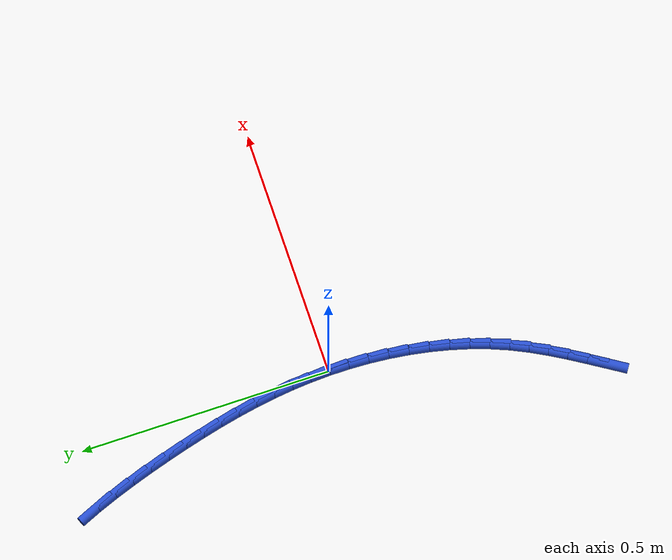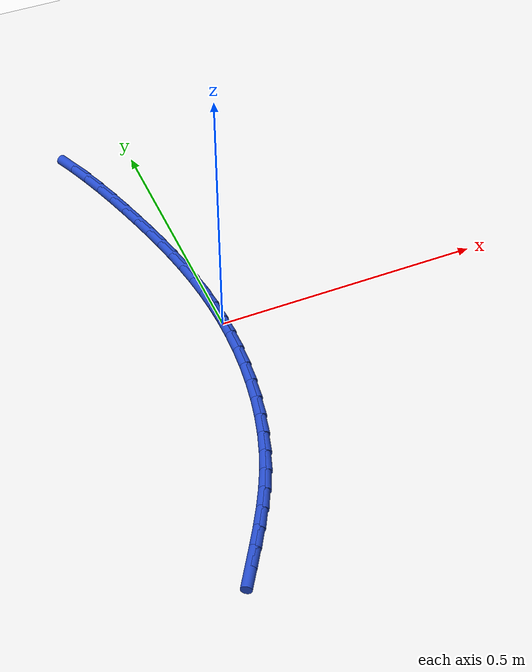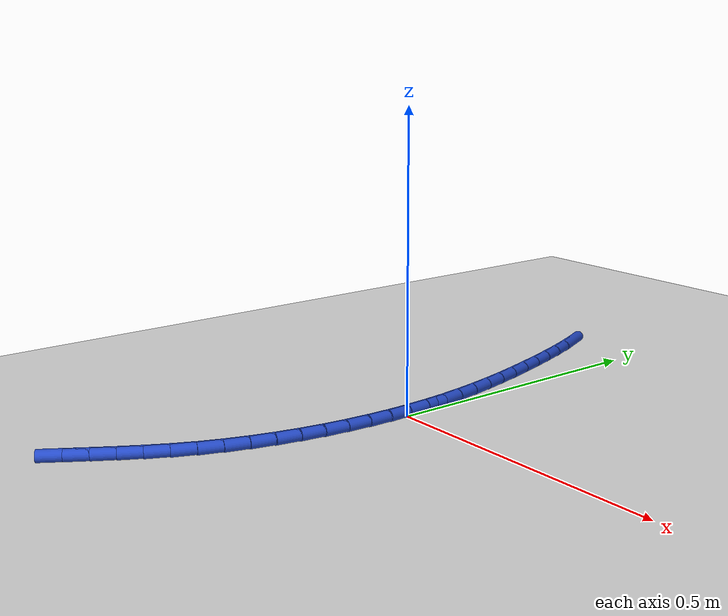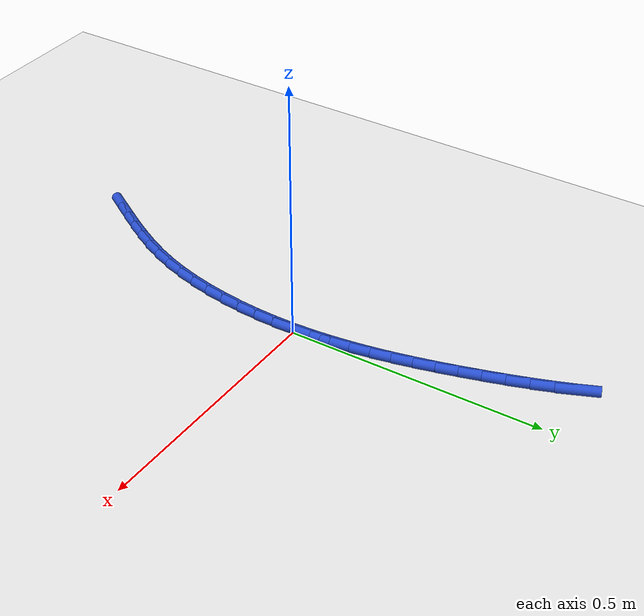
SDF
<sdf version="1.6">
 <world name="default">
  <model name="ground_plane">
   <static>1</static>
   <link name="link">
    <collision name="collision">
     <geometry><plane><normal>0 0 1</normal><size>100 100</size></plane></geometry>
     <surface><friction><ode><mu>100</mu><mu2>50</mu2></ode></friction></surface>
    </collision>
    <visual name="visual">
     <cast_shadows>0</cast_shadows>
     <geometry><plane><normal>0 0 1</normal><size>100 100</size></plane></geometry>
     <material>
      <script><uri>file://media/materials/scripts/gazebo.material</uri><name>Gazebo/WhiteGlow</name></script>
     </material>
    </visual>
   </link>
  </model>
  <model name="line">
   <link name="link_0">
    <pose>1.5612511283791264e-17 -1.1102230246251565e-16 0.01 0 1.57 -1.5275932982898037</pose>
    <collision name="collision">
     <geometry><cylinder><radius>0.01</radius><length>0.08</length></cylinder></geometry>
    </collision>
    <visual name="visual">
     <material>
      <script><name>Gazebo/Blue</name><uri>file://media/materials/scripts/gazebo.material</uri></script>
     </material>
     <geometry><cylinder><radius>0.01</radius><length>0.08</length></cylinder></geometry>
    </visual>
   </link>
   <link name="link_1">
    <pose>-0.001700698081941697 0.03934075666589168 0.01 0 1.57 -1.487673856206493</pose>
    <collision name="collision">
     <geometry><cylinder><radius>0.01</radius><length>0.08</length></cylinder></geometry>
    </collision>
    <visual name="visual">
     <material>
      <script><name>Gazebo/Blue</name><uri>file://media/materials/scripts/gazebo.material</uri></script>
     </material>
     <geometry><cylinder><radius>0.01</radius><length>0.08</length></cylinder></geometry>
    </visual>
   </link>
   <link name="link_2">
    <pose>-0.004948036254716881 0.07831765074993403 0.01 0 1.57 -1.450146105756169</pose>
    <collision name="collision">
     <geometry><cylinder><radius>0.01</radius><length>0.08</length></cylinder></geometry>
    </collision>
    <visual name="visual">
     <material>
      <script><name>Gazebo/Blue</name><uri>file://media/materials/scripts/gazebo.material</uri></script>
     </material>
     <geometry><cylinder><radius>0.01</radius><length>0.08</length></cylinder></geometry>
    </visual>
   </link>
   <link name="link_3">
    <pose>-0.009642300428221659 0.11703672382275872 0.01 0 1.57 -1.4154114310185126</pose>
    <collision name="collision">
     <geometry><cylinder><radius>0.01</radius><length>0.08</length></cylinder></geometry>
    </collision>
    <visual name="visual">
     <material>
      <script><name>Gazebo/Blue</name><uri>file://media/materials/scripts/gazebo.material</uri></script>
     </material>
     <geometry><cylinder><radius>0.01</radius><length>0.08</length></cylinder></geometry>
    </visual>
   </link>
   <link name="link_4">
    <pose>-0.01568377651235217 0.15560401745499755 0.01 0 1.57 -1.3837891874943278</pose>
    <collision name="collision">
     <geometry><cylinder><radius>0.01</radius><length>0.08</length></cylinder></geometry>
    </collision>
    <visual name="visual">
     <material>
      <script><name>Gazebo/Blue</name><uri>file://media/materials/scripts/gazebo.material</uri></script>
     </material>
     <geometry><cylinder><radius>0.01</radius><length>0.08</length></cylinder></geometry>
    </visual>
   </link>
   <link name="link_5">
    <pose>-0.02297275041700454 0.19412557321728222 0.01 0 1.57 -1.3555134308795533</pose>
    <collision name="collision">
     <geometry><cylinder><radius>0.01</radius><length>0.08</length></cylinder></geometry>
    </collision>
    <visual name="visual">
     <material>
      <script><name>Gazebo/Blue</name><uri>file://media/materials/scripts/gazebo.material</uri></script>
     </material>
     <geometry><cylinder><radius>0.01</radius><length>0.08</length></cylinder></geometry>
    </visual>
   </link>
   <link name="link_6">
    <pose>-0.03140950805207488 0.23270743268024452 0.01 0 1.57 -1.3307355909975573</pose>
    <collision name="collision">
     <geometry><cylinder><radius>0.01</radius><length>0.08</length></cylinder></geometry>
    </collision>
    <visual name="visual">
     <material>
      <script><name>Gazebo/Blue</name><uri>file://media/materials/scripts/gazebo.material</uri></script>
     </material>
     <geometry><cylinder><radius>0.01</radius><length>0.08</length></cylinder></geometry>
    </visual>
   </link>
   <link name="link_7">
    <pose>-0.04089433532745936 0.2714556374145163 0.01 0 1.57 -1.3095314973160979</pose>
    <collision name="collision">
     <geometry><cylinder><radius>0.01</radius><length>0.08</length></cylinder></geometry>
    </collision>
    <visual name="visual">
     <material>
      <script><name>Gazebo/Blue</name><uri>file://media/materials/scripts/gazebo.material</uri></script>
     </material>
     <geometry><cylinder><radius>0.01</radius><length>0.08</length></cylinder></geometry>
    </visual>
   </link>
   <link name="link_8">
    <pose>-0.05132751815305407 0.31047622899072924 0.01 0 1.57 -1.291900685610605</pose>
    <collision name="collision">
     <geometry><cylinder><radius>0.01</radius><length>0.08</length></cylinder></geometry>
    </collision>
    <visual name="visual">
     <material>
      <script><name>Gazebo/Blue</name><uri>file://media/materials/scripts/gazebo.material</uri></script>
     </material>
     <geometry><cylinder><radius>0.01</radius><length>0.08</length></cylinder></geometry>
    </visual>
   </link>
   <link name="link_9">
    <pose>-0.06260963347442558 0.34987472585825974 0.01 0 1.57 -1.2755632152967689</pose>
    <collision name="collision">
     <geometry><cylinder><radius>0.01</radius><length>0.08</length></cylinder></geometry>
    </collision>
    <visual name="visual">
     <material>
      <script><name>Gazebo/Blue</name><uri>file://media/materials/scripts/gazebo.material</uri></script>
     </material>
     <geometry><cylinder><radius>0.01</radius><length>0.08</length></cylinder></geometry>
    </visual>
   </link>
   <link name="link_10">
    <pose>-0.07470416861009979 0.3896435683917727 0.01 0 1.57 -1.2554088576671867</pose>
    <collision name="collision">
     <geometry><cylinder><radius>0.01</radius><length>0.08</length></cylinder></geometry>
    </collision>
    <visual name="visual">
     <material>
      <script><name>Gazebo/Blue</name><uri>file://media/materials/scripts/gazebo.material</uri></script>
     </material>
     <geometry><cylinder><radius>0.01</radius><length>0.08</length></cylinder></geometry>
    </visual>
   </link>
   <link name="link_11">
    <pose>-0.08771557155818603 0.4295218275849005 0.01 0 1.57 -1.2305443111355374</pose>
    <collision name="collision">
     <geometry><cylinder><radius>0.01</radius><length>0.08</length></cylinder></geometry>
    </collision>
    <visual name="visual">
     <material>
      <script><name>Gazebo/Blue</name><uri>file://media/materials/scripts/gazebo.material</uri></script>
     </material>
     <geometry><cylinder><radius>0.01</radius><length>0.08</length></cylinder></geometry>
    </visual>
   </link>
   <link name="link_12">
    <pose>-0.10176745645254026 0.46921412431394227 0.01 0 1.57 -1.2006301663532073</pose>
    <collision name="collision">
     <geometry><cylinder><radius>0.01</radius><length>0.08</length></cylinder></geometry>
    </collision>
    <visual name="visual">
     <material>
      <script><name>Gazebo/Blue</name><uri>file://media/materials/scripts/gazebo.material</uri></script>
     </material>
     <geometry><cylinder><radius>0.01</radius><length>0.08</length></cylinder></geometry>
    </visual>
   </link>
   <link name="link_13">
    <pose>-0.1169834374270185 0.5084250794551981 0.01 0 1.57 -1.1652040712181195</pose>
    <collision name="collision">
     <geometry><cylinder><radius>0.01</radius><length>0.08</length></cylinder></geometry>
    </collision>
    <visual name="visual">
     <material>
      <script><name>Gazebo/Blue</name><uri>file://media/materials/scripts/gazebo.material</uri></script>
     </material>
     <geometry><cylinder><radius>0.01</radius><length>0.08</length></cylinder></geometry>
    </visual>
   </link>
   <link name="link_166">
    <pose>-0.15819103973500592 -0.5159647549529071 0.01 0 1.57 1.0066575421704096</pose>
    <collision name="collision">
     <geometry><cylinder><radius>0.01</radius><length>0.08</length></cylinder></geometry>
    </collision>
    <visual name="visual">
     <material>
      <script><name>Gazebo/Blue</name><uri>file://media/materials/scripts/gazebo.material</uri></script>
     </material>
     <geometry><cylinder><radius>0.01</radius><length>0.08</length></cylinder></geometry>
    </visual>
   </link>
   <link name="link_167">
    <pose>-0.13728580389750833 -0.4829250218430782 0.01 0 1.57 1.0179176833872743</pose>
    <collision name="collision">
     <geometry><cylinder><radius>0.01</radius><length>0.08</length></cylinder></geometry>
    </collision>
    <visual name="visual">
     <material>
      <script><name>Gazebo/Blue</name><uri>file://media/materials/scripts/gazebo.material</uri></script>
     </material>
     <geometry><cylinder><radius>0.01</radius><length>0.08</length></cylinder></geometry>
    </visual>
   </link>
   <link name="link_168">
    <pose>-0.11702948107750281 -0.45009855792231823 0.01 0 1.57 1.04186872855224</pose>
    <collision name="collision">
     <geometry><cylinder><radius>0.01</radius><length>0.08</length></cylinder></geometry>
    </collision>
    <visual name="visual">
     <material>
      <script><name>Gazebo/Blue</name><uri>file://media/materials/scripts/gazebo.material</uri></script>
     </material>
     <geometry><cylinder><radius>0.01</radius><length>0.08</length></cylinder></geometry>
    </visual>
   </link>
   <link name="link_169">
    <pose>-0.09774096688029948 -0.4170972554011882 0.01 0 1.57 1.0785020022256124</pose>
    <collision name="collision">
     <geometry><cylinder><radius>0.01</radius><length>0.08</length></cylinder></geometry>
    </collision>
    <visual name="visual">
     <material>
      <script><name>Gazebo/Blue</name><uri>file://media/materials/scripts/gazebo.material</uri></script>
     </material>
     <geometry><cylinder><radius>0.01</radius><length>0.08</length></cylinder></geometry>
    </visual>
   </link>
   <link name="link_170">
    <pose>-0.0797391569112081 -0.3835330064902482 0.01 0 1.57 1.1273139230348679</pose>
    <collision name="collision">
     <geometry><cylinder><radius>0.01</radius><length>0.08</length></cylinder></geometry>
    </collision>
    <visual name="visual">
     <material>
      <script><name>Gazebo/Blue</name><uri>file://media/materials/scripts/gazebo.material</uri></script>
     </material>
     <geometry><cylinder><radius>0.01</radius><length>0.08</length></cylinder></geometry>
    </visual>
   </link>
   <link name="link_171">
    <pose>-0.06334294677553941 -0.3490177034000604 0.01 0 1.57 1.1859320755275433</pose>
    <collision name="collision">
     <geometry><cylinder><radius>0.01</radius><length>0.08</length></cylinder></geometry>
    </collision>
    <visual name="visual">
     <material>
      <script><name>Gazebo/Blue</name><uri>file://media/materials/scripts/gazebo.material</uri></script>
     </material>
     <geometry><cylinder><radius>0.01</radius><length>0.08</length></cylinder></geometry>
    </visual>
   </link>
   <link name="link_172">
    <pose>-0.048840535084950974 -0.31321493660819516 0.01 0 1.57 1.2442584469751383</pose>
    <collision name="collision">
     <geometry><cylinder><radius>0.01</radius><length>0.08</length></cylinder></geometry>
    </collision>
    <visual name="visual">
     <material>
      <script><name>Gazebo/Blue</name><uri>file://media/materials/scripts/gazebo.material</uri></script>
     </material>
     <geometry><cylinder><radius>0.01</radius><length>0.08</length></cylinder></geometry>
    </visual>
   </link>
   <link name="link_173">
    <pose>-0.03629435407108602 -0.27616852049063334 0.01 0 1.57 1.298595351929182</pose>
    <collision name="collision">
     <geometry><cylinder><radius>0.01</radius><length>0.08</length></cylinder></geometry>
    </collision>
    <visual name="visual">
     <material>
      <script><name>Gazebo/Blue</name><uri>file://media/materials/scripts/gazebo.material</uri></script>
     </material>
     <geometry><cylinder><radius>0.01</radius><length>0.08</length></cylinder></geometry>
    </visual>
   </link>
   <link name="link_174">
    <pose>-0.02566607703614458 -0.238091962328694 0.01 0 1.57 1.3495216752669705</pose>
    <collision name="collision">
     <geometry><cylinder><radius>0.01</radius><length>0.08</length></cylinder></geometry>
    </collision>
    <visual name="visual">
     <material>
      <script><name>Gazebo/Blue</name><uri>file://media/materials/scripts/gazebo.material</uri></script>
     </material>
     <geometry><cylinder><radius>0.01</radius><length>0.08</length></cylinder></geometry>
    </visual>
   </link>
   <link name="link_175">
    <pose>-0.016916911151842892 -0.19919955443621423 0.01 0 1.57 1.3976144484242046</pose>
    <collision name="collision">
     <geometry><cylinder><radius>0.01</radius><length>0.08</length></cylinder></geometry>
    </collision>
    <visual name="visual">
     <material>
      <script><name>Gazebo/Blue</name><uri>file://media/materials/scripts/gazebo.material</uri></script>
     </material>
     <geometry><cylinder><radius>0.01</radius><length>0.08</length></cylinder></geometry>
    </visual>
   </link>
   <link name="link_176">
    <pose>-0.010008063589897101 -0.15970558912703003 0.01 0 1.57 1.4434263035093804</pose>
    <collision name="collision">
     <geometry><cylinder><radius>0.01</radius><length>0.08</length></cylinder></geometry>
    </collision>
    <visual name="visual">
     <material>
      <script><name>Gazebo/Blue</name><uri>file://media/materials/scripts/gazebo.material</uri></script>
     </material>
     <geometry><cylinder><radius>0.01</radius><length>0.08</length></cylinder></geometry>
    </visual>
   </link>
   <link name="link_177">
    <pose>-0.00490074152202374 -0.11982435871498005 0.01 0 1.57 1.4874880071916279</pose>
    <collision name="collision">
     <geometry><cylinder><radius>0.01</radius><length>0.08</length></cylinder></geometry>
    </collision>
    <visual name="visual">
     <material>
      <script><name>Gazebo/Blue</name><uri>file://media/materials/scripts/gazebo.material</uri></script>
     </material>
     <geometry><cylinder><radius>0.01</radius><length>0.08</length></cylinder></geometry>
    </visual>
   </link>
   <link name="link_178">
    <pose>-0.001556152119938932 -0.07977015551390047 0.01 0 1.57 1.530315260269025</pose>
    <collision name="collision">
     <geometry><cylinder><radius>0.01</radius><length>0.08</length></cylinder></geometry>
    </collision>
    <visual name="visual">
     <material>
      <script><name>Gazebo/Blue</name><uri>file://media/materials/scripts/gazebo.material</uri></script>
     </material>
     <geometry><cylinder><radius>0.01</radius><length>0.08</length></cylinder></geometry>
    </visual>
   </link>
   <link name="link_179">
    <pose>6.449744464107152e-05 -0.03975727183762816 0.01 0 1.57 -1.5691740477732565</pose>
    <collision name="collision">
     <geometry><cylinder><radius>0.01</radius><length>0.08</length></cylinder></geometry>
    </collision>
    <visual name="visual">
     <material>
      <script><name>Gazebo/Blue</name><uri>file://media/materials/scripts/gazebo.material</uri></script>
     </material>
     <geometry><cylinder><radius>0.01</radius><length>0.08</length></cylinder></geometry>
    </visual>
   </link>
   <link name="link_180">
    <pose>1.0408340855860843e-17 -7.632783294297951e-17 0.01 0 1.57 -1.5272767046748454</pose>
    <collision name="collision">
     <geometry><cylinder><radius>0.01</radius><length>0.08</length></cylinder></geometry>
    </collision>
    <visual name="visual">
     <material>
      <script><name>Gazebo/Blue</name><uri>file://media/materials/scripts/gazebo.material</uri></script>
     </material>
     <geometry><cylinder><radius>0.01</radius><length>0.08</length></cylinder></geometry>
    </visual>
   </link>
   <link name="link_181">
    <pose>-0.0017108516255783853 0.03928736768514681 0.01 0 1.57 -1.5272767046748454</pose>
    <collision name="collision">
     <geometry><cylinder><radius>0.01</radius><length>0.08</length></cylinder></geometry>
    </collision>
    <visual name="visual">
     <material>
      <script><name>Gazebo/Blue</name><uri>file://media/materials/scripts/gazebo.material</uri></script>
     </material>
     <geometry><cylinder><radius>0.01</radius><length>0.08</length></cylinder></geometry>
    </visual>
   </link>
  </model>
 </world>
</sdf>
